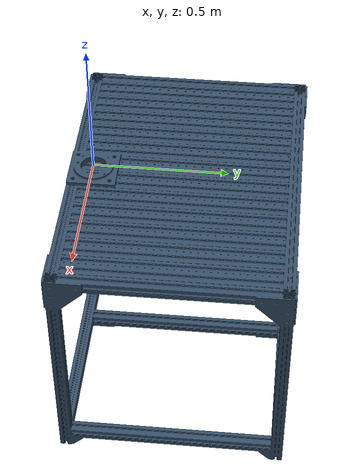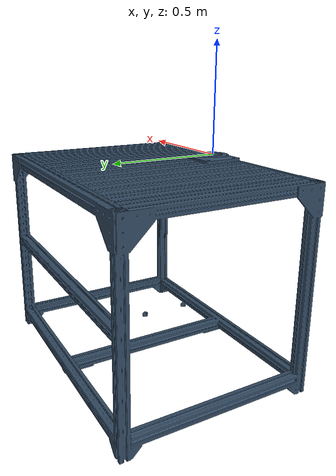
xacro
<?xml version="1.0" ?>
<robot name="ur3e_table">
  <link name="table">
  <visual>
      <origin rpy="1.570796 0 1.570796" xyz="0.715 .9114 -.14"/>
      <geometry>
          <mesh filename="file://$(find ur3e_description)/meshes/table/collision/table.stl" scale="0.01 0.01 0.01"/>
      </geometry>
      <material name="blue">
          <color rgba="0.200 0.294 0.392 1"/>
      </material>
  </visual>
    <collision>
      <origin rpy="0 0 0" xyz="0 0.5 -0.095"/>
      <geometry>
      <box size="1.5 1.5 0.15"/>
      </geometry>
      <inertial>
      <origin xyz="0 0 0" rpy="0 0 0"/>
      <mass value="16.0"/>
      <!-- Inertia for a box:
         Ixx = (1/12) * m * (h^2 + d^2)
         Iyy = (1/12) * m * (w^2 + d^2)
         Izz = (1/12) * m * (w^2 + h^2)
         where w=1.5, h=1.5, d=0.15, m=16.0
      -->
      <inertia
        ixx="3.03125"
        ixy="0.0"
        ixz="0.0"
        iyy="3.03125"
        iyz="0.0"
        izz="6.0"/>
      </inertial>
    </collision>
  </link>
</robot>
